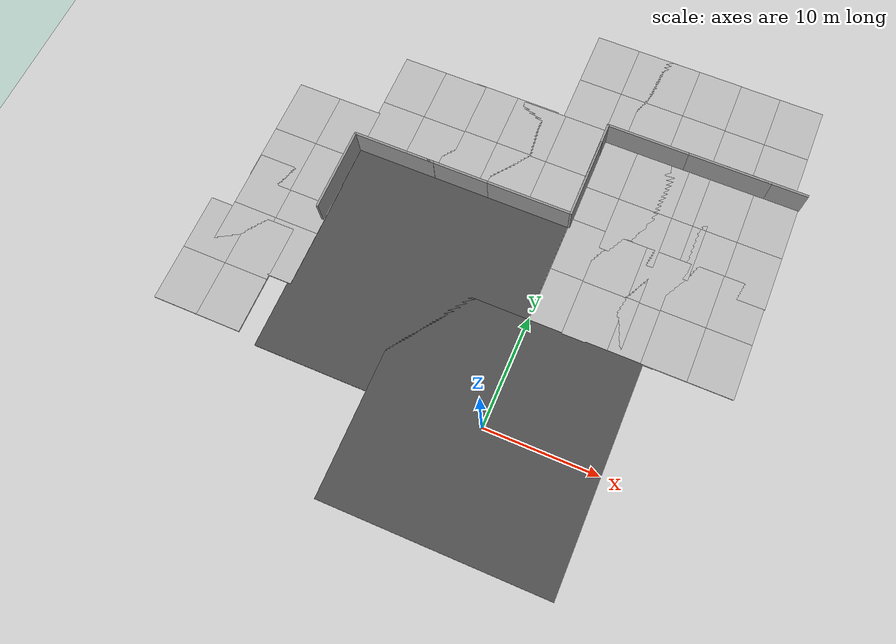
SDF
<sdf version="1.6">
 <world name="default">
  <model name="ground_plane">
   <static>1</static>
   <link name="link">
    <collision name="collision">
     <geometry><plane><normal>0 0 1</normal><size>100 100</size></plane></geometry>
     <surface><friction><ode><mu>100</mu><mu2>50</mu2></ode></friction></surface>
    </collision>
    <visual name="visual">
     <cast_shadows>0</cast_shadows>
     <geometry><plane><normal>0 0 1</normal><size>100 100</size></plane></geometry>
     <material>
      <script><uri>file://media/materials/scripts/gazebo.material</uri><name>Gazebo/Grey</name></script>
     </material>
    </visual>
   </link>
  </model>
  <model name="asphalt_plane">
   <static>1</static>
   <link name="link">
    <collision name="collision"><geometry><box><size>20 20 0.1</size></box></geometry></collision>
    <visual name="visual">
     <cast_shadows>0</cast_shadows>
     <geometry><box><size>20 20 0.1</size></box></geometry>
     <material>
      <script>
       <uri>model://asphalt_plane/materials/scripts</uri>
       <uri>model://asphalt_plane/materials/textures</uri>
       <name>vrc/asphalt</name>
      </script>
     </material>
    </visual>
   </link>
   <pose>0.101082 -0.112041 0 0 -0 0</pose>
  </model>
  <model name="asphalt_plane_0">
   <static>1</static>
   <link name="link">
    <collision name="collision"><geometry><box><size>20 20 0.1</size></box></geometry></collision>
    <visual name="visual">
     <cast_shadows>0</cast_shadows>
     <geometry><box><size>20 20 0.1</size></box></geometry>
     <material>
      <script>
       <uri>model://asphalt_plane/materials/scripts</uri>
       <uri>model://asphalt_plane/materials/textures</uri>
       <name>vrc/asphalt</name>
      </script>
     </material>
    </visual>
   </link>
   <pose>-10.0445 9.17005 0 0 -0 0</pose>
  </model>
  <model name="mud_box_0">
   <static>1</static>
   <link name="link">
    <collision name="collision"><geometry><box><size>8 10 0.2</size></box></geometry></collision>
    <visual name="visual_1">
     <pose>-2 2.5 0 0 -0 0</pose>
     <cast_shadows>0</cast_shadows>
     <geometry><box><size>4 5 0.2</size></box></geometry>
     <material>
      <script>
       <uri>model://mud_box/materials/scripts</uri>
       <uri>model://mud_box/materials/textures</uri>
       <name>vrc/mud</name>
      </script>
     </material>
    </visual>
    <visual name="visual_2">
     <pose>2 2.5 0 0 -0 0</pose>
     <cast_shadows>0</cast_shadows>
     <geometry><box><size>4 5 0.2</size></box></geometry>
     <material>
      <script>
       <uri>model://mud_box/materials/scripts</uri>
       <uri>model://mud_box/materials/textures</uri>
       <name>vrc/mud</name>
      </script>
     </material>
    </visual>
    <visual name="visual_3">
     <pose>2 -2.5 0 0 -0 0</pose>
     <cast_shadows>0</cast_shadows>
     <geometry><box><size>4 5 0.2</size></box></geometry>
     <material>
      <script>
       <uri>model://mud_box/materials/scripts</uri>
       <uri>model://mud_box/materials/textures</uri>
       <name>vrc/mud</name>
      </script>
     </material>
    </visual>
    <visual name="visual_4">
     <pose>-2 -2.5 0 0 -0 0</pose>
     <cast_shadows>0</cast_shadows>
     <geometry><box><size>4 5 0.2</size></box></geometry>
     <material>
      <script>
       <uri>model://mud_box/materials/scripts</uri>
       <uri>model://mud_box/materials/textures</uri>
       <name>vrc/mud</name>
      </script>
     </material>
    </visual>
   </link>
   <pose>4.00975 14.8661 -0.05 0 -0 0</pose>
  </model>
  <model name="mud_box_0_clone">
   <static>1</static>
   <link name="link">
    <collision name="collision"><geometry><box><size>8 10 0.2</size></box></geometry></collision>
    <visual name="visual_1">
     <pose>-2 2.5 0 0 -0 0</pose>
     <cast_shadows>0</cast_shadows>
     <geometry><box><size>4 5 0.2</size></box></geometry>
     <material>
      <script>
       <uri>model://mud_box/materials/scripts</uri>
       <uri>model://mud_box/materials/textures</uri>
       <name>vrc/mud</name>
      </script>
     </material>
    </visual>
    <visual name="visual_2">
     <pose>2 2.5 0 0 -0 0</pose>
     <cast_shadows>0</cast_shadows>
     <geometry><box><size>4 5 0.2</size></box></geometry>
     <material>
      <script>
       <uri>model://mud_box/materials/scripts</uri>
       <uri>model://mud_box/materials/textures</uri>
       <name>vrc/mud</name>
      </script>
     </material>
    </visual>
    <visual name="visual_3">
     <pose>2 -2.5 0 0 -0 0</pose>
     <cast_shadows>0</cast_shadows>
     <geometry><box><size>4 5 0.2</size></box></geometry>
     <material>
      <script>
       <uri>model://mud_box/materials/scripts</uri>
       <uri>model://mud_box/materials/textures</uri>
       <name>vrc/mud</name>
      </script>
     </material>
    </visual>
    <visual name="visual_4">
     <pose>-2 -2.5 0 0 -0 0</pose>
     <cast_shadows>0</cast_shadows>
     <geometry><box><size>4 5 0.2</size></box></geometry>
     <material>
      <script>
       <uri>model://mud_box/materials/scripts</uri>
       <uri>model://mud_box/materials/textures</uri>
       <name>vrc/mud</name>
      </script>
     </material>
    </visual>
   </link>
   <pose>6.95745 14.8127 -0.05 0 -0 0</pose>
  </model>
  <model name="mud_box_0_clone_clone">
   <static>1</static>
   <link name="link">
    <collision name="collision"><geometry><box><size>8 10 0.2</size></box></geometry></collision>
    <visual name="visual_1">
     <pose>-2 2.5 0 0 -0 0</pose>
     <cast_shadows>0</cast_shadows>
     <geometry><box><size>4 5 0.2</size></box></geometry>
     <material>
      <script>
       <uri>model://mud_box/materials/scripts</uri>
       <uri>model://mud_box/materials/textures</uri>
       <name>vrc/mud</name>
      </script>
     </material>
    </visual>
    <visual name="visual_2">
     <pose>2 2.5 0 0 -0 0</pose>
     <cast_shadows>0</cast_shadows>
     <geometry><box><size>4 5 0.2</size></box></geometry>
     <material>
      <script>
       <uri>model://mud_box/materials/scripts</uri>
       <uri>model://mud_box/materials/textures</uri>
       <name>vrc/mud</name>
      </script>
     </material>
    </visual>
    <visual name="visual_3">
     <pose>2 -2.5 0 0 -0 0</pose>
     <cast_shadows>0</cast_shadows>
     <geometry><box><size>4 5 0.2</size></box></geometry>
     <material>
      <script>
       <uri>model://mud_box/materials/scripts</uri>
       <uri>model://mud_box/materials/textures</uri>
       <name>vrc/mud</name>
      </script>
     </material>
    </visual>
    <visual name="visual_4">
     <pose>-2 -2.5 0 0 -0 0</pose>
     <cast_shadows>0</cast_shadows>
     <geometry><box><size>4 5 0.2</size></box></geometry>
     <material>
      <script>
       <uri>model://mud_box/materials/scripts</uri>
       <uri>model://mud_box/materials/textures</uri>
       <name>vrc/mud</name>
      </script>
     </material>
    </visual>
   </link>
   <pose>13.8624 14.8541 -0.05 0 -0 0</pose>
  </model>
  <model name="mud_box_0_clone_clone_0">
   <static>1</static>
   <link name="link">
    <collision name="collision"><geometry><box><size>8 10 0.2</size></box></geometry></collision>
    <visual name="visual_1">
     <pose>-2 2.5 0 0 -0 0</pose>
     <cast_shadows>0</cast_shadows>
     <geometry><box><size>4 5 0.2</size></box></geometry>
     <material>
      <script>
       <uri>model://mud_box/materials/scripts</uri>
       <uri>model://mud_box/materials/textures</uri>
       <name>vrc/mud</name>
      </script>
     </material>
    </visual>
    <visual name="visual_2">
     <pose>2 2.5 0 0 -0 0</pose>
     <cast_shadows>0</cast_shadows>
     <geometry><box><size>4 5 0.2</size></box></geometry>
     <material>
      <script>
       <uri>model://mud_box/materials/scripts</uri>
       <uri>model://mud_box/materials/textures</uri>
       <name>vrc/mud</name>
      </script>
     </material>
    </visual>
    <visual name="visual_3">
     <pose>2 -2.5 0 0 -0 0</pose>
     <cast_shadows>0</cast_shadows>
     <geometry><box><size>4 5 0.2</size></box></geometry>
     <material>
      <script>
       <uri>model://mud_box/materials/scripts</uri>
       <uri>model://mud_box/materials/textures</uri>
       <name>vrc/mud</name>
      </script>
     </material>
    </visual>
    <visual name="visual_4">
     <pose>-2 -2.5 0 0 -0 0</pose>
     <cast_shadows>0</cast_shadows>
     <geometry><box><size>4 5 0.2</size></box></geometry>
     <material>
      <script>
       <uri>model://mud_box/materials/scripts</uri>
       <uri>model://mud_box/materials/textures</uri>
       <name>vrc/mud</name>
      </script>
     </material>
    </visual>
   </link>
   <pose>13.9309 23.2305 -0.05 0 -0 0</pose>
  </model>
  <model name="mud_box_0_clone_clone_1">
   <static>1</static>
   <link name="link">
    <collision name="collision"><geometry><box><size>8 10 0.2</size></box></geometry></collision>
    <visual name="visual_1">
     <pose>-2 2.5 0 0 -0 0</pose>
     <cast_shadows>0</cast_shadows>
     <geometry><box><size>4 5 0.2</size></box></geometry>
     <material>
      <script>
       <uri>model://mud_box/materials/scripts</uri>
       <uri>model://mud_box/materials/textures</uri>
       <name>vrc/mud</name>
      </script>
     </material>
    </visual>
    <visual name="visual_2">
     <pose>2 2.5 0 0 -0 0</pose>
     <cast_shadows>0</cast_shadows>
     <geometry><box><size>4 5 0.2</size></box></geometry>
     <material>
      <script>
       <uri>model://mud_box/materials/scripts</uri>
       <uri>model://mud_box/materials/textures</uri>
       <name>vrc/mud</name>
      </script>
     </material>
    </visual>
    <visual name="visual_3">
     <pose>2 -2.5 0 0 -0 0</pose>
     <cast_shadows>0</cast_shadows>
     <geometry><box><size>4 5 0.2</size></box></geometry>
     <material>
      <script>
       <uri>model://mud_box/materials/scripts</uri>
       <uri>model://mud_box/materials/textures</uri>
       <name>vrc/mud</name>
      </script>
     </material>
    </visual>
    <visual name="visual_4">
     <pose>-2 -2.5 0 0 -0 0</pose>
     <cast_shadows>0</cast_shadows>
     <geometry><box><size>4 5 0.2</size></box></geometry>
     <material>
      <script>
       <uri>model://mud_box/materials/scripts</uri>
       <uri>model://mud_box/materials/textures</uri>
       <name>vrc/mud</name>
      </script>
     </material>
    </visual>
   </link>
   <pose>7.13491 23.2347 -0.05 0 -0 0</pose>
  </model>
  <model name="mud_box_0_clone_clone_2">
   <static>1</static>
   <link name="link">
    <collision name="collision"><geometry><box><size>8 10 0.2</size></box></geometry></collision>
    <visual name="visual_1">
     <pose>-2 2.5 0 0 -0 0</pose>
     <cast_shadows>0</cast_shadows>
     <geometry><box><size>4 5 0.2</size></box></geometry>
     <material>
      <script>
       <uri>model://mud_box/materials/scripts</uri>
       <uri>model://mud_box/materials/textures</uri>
       <name>vrc/mud</name>
      </script>
     </material>
    </visual>
    <visual name="visual_2">
     <pose>2 2.5 0 0 -0 0</pose>
     <cast_shadows>0</cast_shadows>
     <geometry><box><size>4 5 0.2</size></box></geometry>
     <material>
      <script>
       <uri>model://mud_box/materials/scripts</uri>
       <uri>model://mud_box/materials/textures</uri>
       <name>vrc/mud</name>
      </script>
     </material>
    </visual>
    <visual name="visual_3">
     <pose>2 -2.5 0 0 -0 0</pose>
     <cast_shadows>0</cast_shadows>
     <geometry><box><size>4 5 0.2</size></box></geometry>
     <material>
      <script>
       <uri>model://mud_box/materials/scripts</uri>
       <uri>model://mud_box/materials/textures</uri>
       <name>vrc/mud</name>
      </script>
     </material>
    </visual>
    <visual name="visual_4">
     <pose>-2 -2.5 0 0 -0 0</pose>
     <cast_shadows>0</cast_shadows>
     <geometry><box><size>4 5 0.2</size></box></geometry>
     <material>
      <script>
       <uri>model://mud_box/materials/scripts</uri>
       <uri>model://mud_box/materials/textures</uri>
       <name>vrc/mud</name>
      </script>
     </material>
    </visual>
   </link>
   <pose>4.00714 23.2382 -0.05 0 -0 0</pose>
  </model>
  <model name="grey_wall">
   <static>1</static>
   <link name="link">
    <pose>0 0 1.4 0 -0 0</pose>
    <collision name="collision"><geometry><box><size>7.5 0.2 2.8</size></box></geometry></collision>
    <visual name="visual">
     <cast_shadows>0</cast_shadows>
     <geometry><box><size>7.5 0.2 2.8</size></box></geometry>
     <material>
      <script>
       <uri>model://grey_wall/materials/scripts</uri>
       <uri>model://grey_wall/materials/textures</uri>
       <name>vrc/grey_wall</name>
      </script>
     </material>
    </visual>
   </link>
   <pose>-3.78845 19.0672 0 0 -0 0</pose>
  </model>
  <model name="grey_wall_0">
   <static>1</static>
   <link name="link">
    <pose>0 0 1.4 0 -0 0</pose>
    <collision name="collision"><geometry><box><size>7.5 0.2 2.8</size></box></geometry></collision>
    <visual name="visual">
     <cast_shadows>0</cast_shadows>
     <geometry><box><size>7.5 0.2 2.8</size></box></geometry>
     <material>
      <script>
       <uri>model://grey_wall/materials/scripts</uri>
       <uri>model://grey_wall/materials/textures</uri>
       <name>vrc/grey_wall</name>
      </script>
     </material>
    </visual>
   </link>
   <pose>-11.2734 19.0639 0 0 -0 0</pose>
  </model>
  <model name="grey_wall_1">
   <static>1</static>
   <link name="link">
    <pose>0 0 1.4 0 -0 0</pose>
    <collision name="collision"><geometry><box><size>7.5 0.2 2.8</size></box></geometry></collision>
    <visual name="visual">
     <cast_shadows>0</cast_shadows>
     <geometry><box><size>7.5 0.2 2.8</size></box></geometry>
     <material>
      <script>
       <uri>model://grey_wall/materials/scripts</uri>
       <uri>model://grey_wall/materials/textures</uri>
       <name>vrc/grey_wall</name>
      </script>
     </material>
    </visual>
   </link>
   <pose>-16.2929 19.0608 0 0 -0 0</pose>
  </model>
  <model name="grey_wall_2">
   <static>1</static>
   <link name="link">
    <pose>0 0 1.4 0 -0 0</pose>
    <collision name="collision"><geometry><box><size>7.5 0.2 2.8</size></box></geometry></collision>
    <visual name="visual">
     <cast_shadows>0</cast_shadows>
     <geometry><box><size>7.5 0.2 2.8</size></box></geometry>
     <material>
      <script>
       <uri>model://grey_wall/materials/scripts</uri>
       <uri>model://grey_wall/materials/textures</uri>
       <name>vrc/grey_wall</name>
      </script>
     </material>
    </visual>
   </link>
   <pose>-19.9266 15.28 0 0 -0 1.57518</pose>
  </model>
  <model name="grey_wall_2_clone">
   <static>1</static>
   <link name="link">
    <pose>0 0 1.4 0 -0 0</pose>
    <collision name="collision"><geometry><box><size>7.5 0.2 2.8</size></box></geometry></collision>
    <visual name="visual">
     <cast_shadows>0</cast_shadows>
     <geometry><box><size>7.5 0.2 2.8</size></box></geometry>
     <material>
      <script>
       <uri>model://grey_wall/materials/scripts</uri>
       <uri>model://grey_wall/materials/textures</uri>
       <name>vrc/grey_wall</name>
      </script>
     </material>
    </visual>
   </link>
   <pose>0.032838 22.7251 0 0 -0 1.57518</pose>
  </model>
  <model name="grey_wall_2_clone_clone">
   <static>1</static>
   <link name="link">
    <pose>0 0 1.4 0 -0 0</pose>
    <collision name="collision"><geometry><box><size>7.5 0.2 2.8</size></box></geometry></collision>
    <visual name="visual">
     <cast_shadows>0</cast_shadows>
     <geometry><box><size>7.5 0.2 2.8</size></box></geometry>
     <material>
      <script>
       <uri>model://grey_wall/materials/scripts</uri>
       <uri>model://grey_wall/materials/textures</uri>
       <name>vrc/grey_wall</name>
      </script>
     </material>
    </visual>
   </link>
   <pose>0.021485 24.4609 0 0 -0 1.57518</pose>
  </model>
  <model name="grey_wall_clone">
   <static>1</static>
   <link name="link">
    <pose>0 0 1.4 0 -0 0</pose>
    <collision name="collision"><geometry><box><size>7.5 0.2 2.8</size></box></geometry></collision>
    <visual name="visual">
     <cast_shadows>0</cast_shadows>
     <geometry><box><size>7.5 0.2 2.8</size></box></geometry>
     <material>
      <script>
       <uri>model://grey_wall/materials/scripts</uri>
       <uri>model://grey_wall/materials/textures</uri>
       <name>vrc/grey_wall</name>
      </script>
     </material>
    </visual>
   </link>
   <pose>3.64187 28.1905 0 0 -0 0</pose>
  </model>
  <model name="grey_wall_clone_clone">
   <static>1</static>
   <link name="link">
    <pose>0 0 1.4 0 -0 0</pose>
    <collision name="collision"><geometry><box><size>7.5 0.2 2.8</size></box></geometry></collision>
    <visual name="visual">
     <cast_shadows>0</cast_shadows>
     <geometry><box><size>7.5 0.2 2.8</size></box></geometry>
     <material>
      <script>
       <uri>model://grey_wall/materials/scripts</uri>
       <uri>model://grey_wall/materials/textures</uri>
       <name>vrc/grey_wall</name>
      </script>
     </material>
    </visual>
   </link>
   <pose>11.0523 28.1918 0 0 -0 0</pose>
  </model>
  <model name="grey_wall_clone_clone_clone">
   <static>1</static>
   <link name="link">
    <pose>0 0 1.4 0 -0 0</pose>
    <collision name="collision"><geometry><box><size>7.5 0.2 2.8</size></box></geometry></collision>
    <visual name="visual">
     <cast_shadows>0</cast_shadows>
     <geometry><box><size>7.5 0.2 2.8</size></box></geometry>
     <material>
      <script>
       <uri>model://grey_wall/materials/scripts</uri>
       <uri>model://grey_wall/materials/textures</uri>
       <name>vrc/grey_wall</name>
      </script>
     </material>
    </visual>
   </link>
   <pose>14.2618 28.1996 0 0 -0 0</pose>
  </model>
  <model name="mud_box_clone_5">
   <static>1</static>
   <link name="link">
    <collision name="collision"><geometry><box><size>8 10 0.2</size></box></geometry></collision>
    <visual name="visual_1">
     <pose>-2 2.5 0 0 -0 0</pose>
     <cast_shadows>0</cast_shadows>
     <geometry><box><size>4 5 0.2</size></box></geometry>
     <material>
      <script>
       <uri>model://mud_box/materials/scripts</uri>
       <uri>model://mud_box/materials/textures</uri>
       <name>vrc/mud</name>
      </script>
     </material>
    </visual>
    <visual name="visual_2">
     <pose>2 2.5 0 0 -0 0</pose>
     <cast_shadows>0</cast_shadows>
     <geometry><box><size>4 5 0.2</size></box></geometry>
     <material>
      <script>
       <uri>model://mud_box/materials/scripts</uri>
       <uri>model://mud_box/materials/textures</uri>
       <name>vrc/mud</name>
      </script>
     </material>
    </visual>
    <visual name="visual_3">
     <pose>2 -2.5 0 0 -0 0</pose>
     <cast_shadows>0</cast_shadows>
     <geometry><box><size>4 5 0.2</size></box></geometry>
     <material>
      <script>
       <uri>model://mud_box/materials/scripts</uri>
       <uri>model://mud_box/materials/textures</uri>
       <name>vrc/mud</name>
      </script>
     </material>
    </visual>
    <visual name="visual_4">
     <pose>-2 -2.5 0 0 -0 0</pose>
     <cast_shadows>0</cast_shadows>
     <geometry><box><size>4 5 0.2</size></box></geometry>
     <material>
      <script>
       <uri>model://mud_box/materials/scripts</uri>
       <uri>model://mud_box/materials/textures</uri>
       <name>vrc/mud</name>
      </script>
     </material>
    </visual>
   </link>
   <pose>-25.781 4.71655 0 0 -0 0</pose>
  </model>
  <model name="mud_box_clone_6">
   <static>1</static>
   <link name="link">
    <collision name="collision"><geometry><box><size>8 10 0.2</size></box></geometry></collision>
    <visual name="visual_1">
     <pose>-2 2.5 0 0 -0 0</pose>
     <cast_shadows>0</cast_shadows>
     <geometry><box><size>4 5 0.2</size></box></geometry>
     <material>
      <script>
       <uri>model://mud_box/materials/scripts</uri>
       <uri>model://mud_box/materials/textures</uri>
       <name>vrc/mud</name>
      </script>
     </material>
    </visual>
    <visual name="visual_2">
     <pose>2 2.5 0 0 -0 0</pose>
     <cast_shadows>0</cast_shadows>
     <geometry><box><size>4 5 0.2</size></box></geometry>
     <material>
      <script>
       <uri>model://mud_box/materials/scripts</uri>
       <uri>model://mud_box/materials/textures</uri>
       <name>vrc/mud</name>
      </script>
     </material>
    </visual>
    <visual name="visual_3">
     <pose>2 -2.5 0 0 -0 0</pose>
     <cast_shadows>0</cast_shadows>
     <geometry><box><size>4 5 0.2</size></box></geometry>
     <material>
      <script>
       <uri>model://mud_box/materials/scripts</uri>
       <uri>model://mud_box/materials/textures</uri>
       <name>vrc/mud</name>
      </script>
     </material>
    </visual>
    <visual name="visual_4">
     <pose>-2 -2.5 0 0 -0 0</pose>
     <cast_shadows>0</cast_shadows>
     <geometry><box><size>4 5 0.2</size></box></geometry>
     <material>
      <script>
       <uri>model://mud_box/materials/scripts</uri>
       <uri>model://mud_box/materials/textures</uri>
       <name>vrc/mud</name>
      </script>
     </material>
    </visual>
   </link>
   <pose>-23.7427 10.1279 0 0 -0 0</pose>
  </model>
  <model name="mud_box_clone_7">
   <static>1</static>
   <link name="link">
    <collision name="collision"><geometry><box><size>8 10 0.2</size></box></geometry></collision>
    <visual name="visual_1">
     <pose>-2 2.5 0 0 -0 0</pose>
     <cast_shadows>0</cast_shadows>
     <geometry><box><size>4 5 0.2</size></box></geometry>
     <material>
      <script>
       <uri>model://mud_box/materials/scripts</uri>
       <uri>model://mud_box/materials/textures</uri>
       <name>vrc/mud</name>
      </script>
     </material>
    </visual>
    <visual name="visual_2">
     <pose>2 2.5 0 0 -0 0</pose>
     <cast_shadows>0</cast_shadows>
     <geometry><box><size>4 5 0.2</size></box></geometry>
     <material>
      <script>
       <uri>model://mud_box/materials/scripts</uri>
       <uri>model://mud_box/materials/textures</uri>
       <name>vrc/mud</name>
      </script>
     </material>
    </visual>
    <visual name="visual_3">
     <pose>2 -2.5 0 0 -0 0</pose>
     <cast_shadows>0</cast_shadows>
     <geometry><box><size>4 5 0.2</size></box></geometry>
     <material>
      <script>
       <uri>model://mud_box/materials/scripts</uri>
       <uri>model://mud_box/materials/textures</uri>
       <name>vrc/mud</name>
      </script>
     </material>
    </visual>
    <visual name="visual_4">
     <pose>-2 -2.5 0 0 -0 0</pose>
     <cast_shadows>0</cast_shadows>
     <geometry><box><size>4 5 0.2</size></box></geometry>
     <material>
      <script>
       <uri>model://mud_box/materials/scripts</uri>
       <uri>model://mud_box/materials/textures</uri>
       <name>vrc/mud</name>
      </script>
     </material>
    </visual>
   </link>
   <pose>-23.7943 17.9926 0 0 -0 0</pose>
  </model>
  <model name="mud_box_clone_8">
   <static>1</static>
   <link name="link">
    <collision name="collision"><geometry><box><size>8 10 0.2</size></box></geometry></collision>
    <visual name="visual_1">
     <pose>-2 2.5 0 0 -0 0</pose>
     <cast_shadows>0</cast_shadows>
     <geometry><box><size>4 5 0.2</size></box></geometry>
     <material>
      <script>
       <uri>model://mud_box/materials/scripts</uri>
       <uri>model://mud_box/materials/textures</uri>
       <name>vrc/mud</name>
      </script>
     </material>
    </visual>
    <visual name="visual_2">
     <pose>2 2.5 0 0 -0 0</pose>
     <cast_shadows>0</cast_shadows>
     <geometry><box><size>4 5 0.2</size></box></geometry>
     <material>
      <script>
       <uri>model://mud_box/materials/scripts</uri>
       <uri>model://mud_box/materials/textures</uri>
       <name>vrc/mud</name>
      </script>
     </material>
    </visual>
    <visual name="visual_3">
     <pose>2 -2.5 0 0 -0 0</pose>
     <cast_shadows>0</cast_shadows>
     <geometry><box><size>4 5 0.2</size></box></geometry>
     <material>
      <script>
       <uri>model://mud_box/materials/scripts</uri>
       <uri>model://mud_box/materials/textures</uri>
       <name>vrc/mud</name>
      </script>
     </material>
    </visual>
    <visual name="visual_4">
     <pose>-2 -2.5 0 0 -0 0</pose>
     <cast_shadows>0</cast_shadows>
     <geometry><box><size>4 5 0.2</size></box></geometry>
     <material>
      <script>
       <uri>model://mud_box/materials/scripts</uri>
       <uri>model://mud_box/materials/textures</uri>
       <name>vrc/mud</name>
      </script>
     </material>
    </visual>
   </link>
   <pose>-15.9649 24.2183 0 0 -0 0</pose>
  </model>
  <model name="mud_box_clone_9">
   <static>1</static>
   <link name="link">
    <collision name="collision"><geometry><box><size>8 10 0.2</size></box></geometry></collision>
    <visual name="visual_1">
     <pose>-2 2.5 0 0 -0 0</pose>
     <cast_shadows>0</cast_shadows>
     <geometry><box><size>4 5 0.2</size></box></geometry>
     <material>
      <script>
       <uri>model://mud_box/materials/scripts</uri>
       <uri>model://mud_box/materials/textures</uri>
       <name>vrc/mud</name>
      </script>
     </material>
    </visual>
    <visual name="visual_2">
     <pose>2 2.5 0 0 -0 0</pose>
     <cast_shadows>0</cast_shadows>
     <geometry><box><size>4 5 0.2</size></box></geometry>
     <material>
      <script>
       <uri>model://mud_box/materials/scripts</uri>
       <uri>model://mud_box/materials/textures</uri>
       <name>vrc/mud</name>
      </script>
     </material>
    </visual>
    <visual name="visual_3">
     <pose>2 -2.5 0 0 -0 0</pose>
     <cast_shadows>0</cast_shadows>
     <geometry><box><size>4 5 0.2</size></box></geometry>
     <material>
      <script>
       <uri>model://mud_box/materials/scripts</uri>
       <uri>model://mud_box/materials/textures</uri>
       <name>vrc/mud</name>
      </script>
     </material>
    </visual>
    <visual name="visual_4">
     <pose>-2 -2.5 0 0 -0 0</pose>
     <cast_shadows>0</cast_shadows>
     <geometry><box><size>4 5 0.2</size></box></geometry>
     <material>
      <script>
       <uri>model://mud_box/materials/scripts</uri>
       <uri>model://mud_box/materials/textures</uri>
       <name>vrc/mud</name>
      </script>
     </material>
    </visual>
   </link>
   <pose>-8.84381 24.2728 0 0 -0 0</pose>
  </model>
  <model name="mud_box_clone_10">
   <static>1</static>
   <link name="link">
    <collision name="collision"><geometry><box><size>8 10 0.2</size></box></geometry></collision>
    <visual name="visual_1">
     <pose>-2 2.5 0 0 -0 0</pose>
     <cast_shadows>0</cast_shadows>
     <geometry><box><size>4 5 0.2</size></box></geometry>
     <material>
      <script>
       <uri>model://mud_box/materials/scripts</uri>
       <uri>model://mud_box/materials/textures</uri>
       <name>vrc/mud</name>
      </script>
     </material>
    </visual>
    <visual name="visual_2">
     <pose>2 2.5 0 0 -0 0</pose>
     <cast_shadows>0</cast_shadows>
     <geometry><box><size>4 5 0.2</size></box></geometry>
     <material>
      <script>
       <uri>model://mud_box/materials/scripts</uri>
       <uri>model://mud_box/materials/textures</uri>
       <name>vrc/mud</name>
      </script>
     </material>
    </visual>
    <visual name="visual_3">
     <pose>2 -2.5 0 0 -0 0</pose>
     <cast_shadows>0</cast_shadows>
     <geometry><box><size>4 5 0.2</size></box></geometry>
     <material>
      <script>
       <uri>model://mud_box/materials/scripts</uri>
       <uri>model://mud_box/materials/textures</uri>
       <name>vrc/mud</name>
      </script>
     </material>
    </visual>
    <visual name="visual_4">
     <pose>-2 -2.5 0 0 -0 0</pose>
     <cast_shadows>0</cast_shadows>
     <geometry><box><size>4 5 0.2</size></box></geometry>
     <material>
      <script>
       <uri>model://mud_box/materials/scripts</uri>
       <uri>model://mud_box/materials/textures</uri>
       <name>vrc/mud</name>
      </script>
     </material>
    </visual>
   </link>
   <pose>-4.11784 24.1728 0 0 -0 0</pose>
  </model>
  <model name="mud_box_clone_11">
   <static>1</static>
   <link name="link">
    <collision name="collision"><geometry><box><size>8 10 0.2</size></box></geometry></collision>
    <visual name="visual_1">
     <pose>-2 2.5 0 0 -0 0</pose>
     <cast_shadows>0</cast_shadows>
     <geometry><box><size>4 5 0.2</size></box></geometry>
     <material>
      <script>
       <uri>model://mud_box/materials/scripts</uri>
       <uri>model://mud_box/materials/textures</uri>
       <name>vrc/mud</name>
      </script>
     </material>
    </visual>
    <visual name="visual_2">
     <pose>2 2.5 0 0 -0 0</pose>
     <cast_shadows>0</cast_shadows>
     <geometry><box><size>4 5 0.2</size></box></geometry>
     <material>
      <script>
       <uri>model://mud_box/materials/scripts</uri>
       <uri>model://mud_box/materials/textures</uri>
       <name>vrc/mud</name>
      </script>
     </material>
    </visual>
    <visual name="visual_3">
     <pose>2 -2.5 0 0 -0 0</pose>
     <cast_shadows>0</cast_shadows>
     <geometry><box><size>4 5 0.2</size></box></geometry>
     <material>
      <script>
       <uri>model://mud_box/materials/scripts</uri>
       <uri>model://mud_box/materials/textures</uri>
       <name>vrc/mud</name>
      </script>
     </material>
    </visual>
    <visual name="visual_4">
     <pose>-2 -2.5 0 0 -0 0</pose>
     <cast_shadows>0</cast_shadows>
     <geometry><box><size>4 5 0.2</size></box></geometry>
     <material>
      <script>
       <uri>model://mud_box/materials/scripts</uri>
       <uri>model://mud_box/materials/textures</uri>
       <name>vrc/mud</name>
      </script>
     </material>
    </visual>
   </link>
   <pose>-0.300976 33.285 0 0 -0 0</pose>
  </model>
  <model name="mud_box_clone_12">
   <static>1</static>
   <link name="link">
    <collision name="collision"><geometry><box><size>8 10 0.2</size></box></geometry></collision>
    <visual name="visual_1">
     <pose>-2 2.5 0 0 -0 0</pose>
     <cast_shadows>0</cast_shadows>
     <geometry><box><size>4 5 0.2</size></box></geometry>
     <material>
      <script>
       <uri>model://mud_box/materials/scripts</uri>
       <uri>model://mud_box/materials/textures</uri>
       <name>vrc/mud</name>
      </script>
     </material>
    </visual>
    <visual name="visual_2">
     <pose>2 2.5 0 0 -0 0</pose>
     <cast_shadows>0</cast_shadows>
     <geometry><box><size>4 5 0.2</size></box></geometry>
     <material>
      <script>
       <uri>model://mud_box/materials/scripts</uri>
       <uri>model://mud_box/materials/textures</uri>
       <name>vrc/mud</name>
      </script>
     </material>
    </visual>
    <visual name="visual_3">
     <pose>2 -2.5 0 0 -0 0</pose>
     <cast_shadows>0</cast_shadows>
     <geometry><box><size>4 5 0.2</size></box></geometry>
     <material>
      <script>
       <uri>model://mud_box/materials/scripts</uri>
       <uri>model://mud_box/materials/textures</uri>
       <name>vrc/mud</name>
      </script>
     </material>
    </visual>
    <visual name="visual_4">
     <pose>-2 -2.5 0 0 -0 0</pose>
     <cast_shadows>0</cast_shadows>
     <geometry><box><size>4 5 0.2</size></box></geometry>
     <material>
      <script>
       <uri>model://mud_box/materials/scripts</uri>
       <uri>model://mud_box/materials/textures</uri>
       <name>vrc/mud</name>
      </script>
     </material>
    </visual>
   </link>
   <pose>5.62216 33.2804 0 0 -0 0</pose>
  </model>
  <model name="mud_box_clone_13">
   <static>1</static>
   <link name="link">
    <collision name="collision"><geometry><box><size>8 10 0.2</size></box></geometry></collision>
    <visual name="visual_1">
     <pose>-2 2.5 0 0 -0 0</pose>
     <cast_shadows>0</cast_shadows>
     <geometry><box><size>4 5 0.2</size></box></geometry>
     <material>
      <script>
       <uri>model://mud_box/materials/scripts</uri>
       <uri>model://mud_box/materials/textures</uri>
       <name>vrc/mud</name>
      </script>
     </material>
    </visual>
    <visual name="visual_2">
     <pose>2 2.5 0 0 -0 0</pose>
     <cast_shadows>0</cast_shadows>
     <geometry><box><size>4 5 0.2</size></box></geometry>
     <material>
      <script>
       <uri>model://mud_box/materials/scripts</uri>
       <uri>model://mud_box/materials/textures</uri>
       <name>vrc/mud</name>
      </script>
     </material>
    </visual>
    <visual name="visual_3">
     <pose>2 -2.5 0 0 -0 0</pose>
     <cast_shadows>0</cast_shadows>
     <geometry><box><size>4 5 0.2</size></box></geometry>
     <material>
      <script>
       <uri>model://mud_box/materials/scripts</uri>
       <uri>model://mud_box/materials/textures</uri>
       <name>vrc/mud</name>
      </script>
     </material>
    </visual>
    <visual name="visual_4">
     <pose>-2 -2.5 0 0 -0 0</pose>
     <cast_shadows>0</cast_shadows>
     <geometry><box><size>4 5 0.2</size></box></geometry>
     <material>
      <script>
       <uri>model://mud_box/materials/scripts</uri>
       <uri>model://mud_box/materials/textures</uri>
       <name>vrc/mud</name>
      </script>
     </material>
    </visual>
   </link>
   <pose>13.3126 33.2529 0 0 -0 0</pose>
  </model>
 </world>
</sdf>
